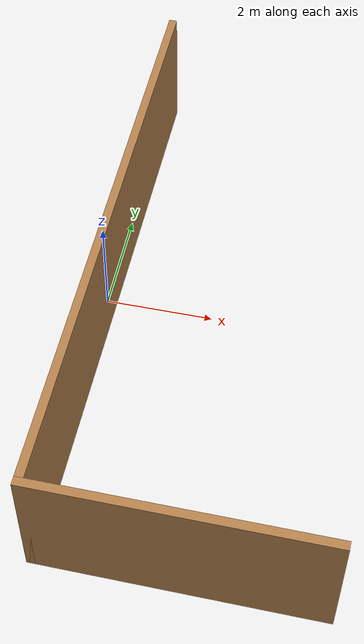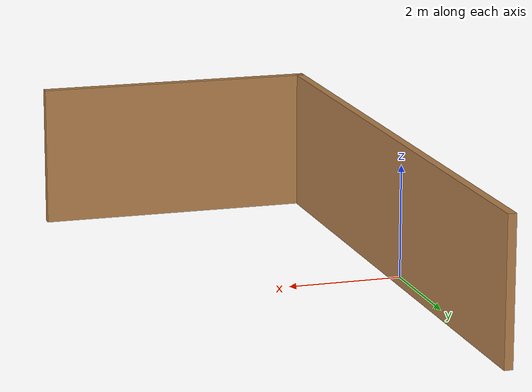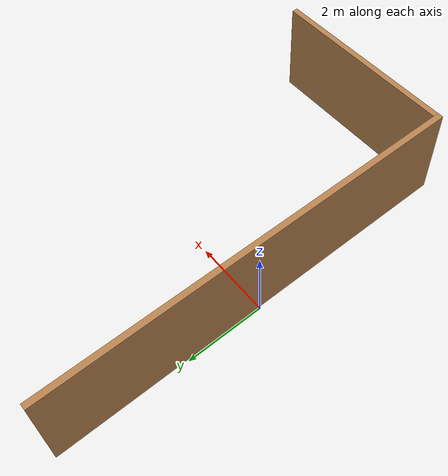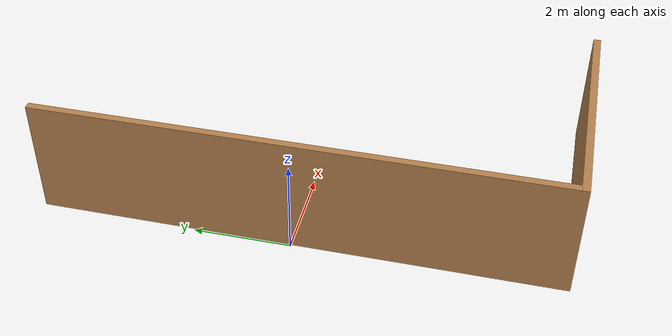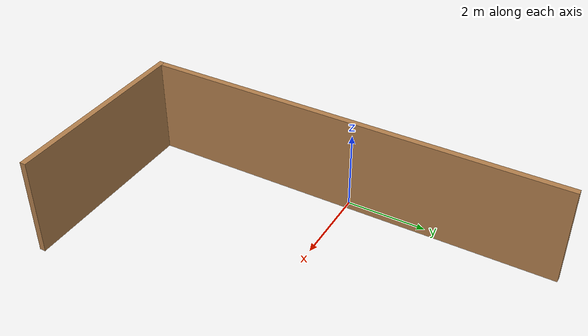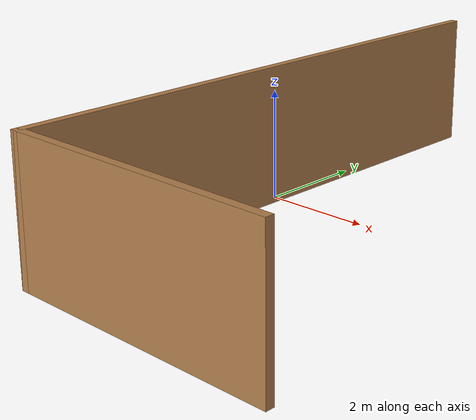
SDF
<?xml version='1.0'?>
<sdf version='1.7'>
  <model name='world_window'>
    <pose>2.51972 -0.107513 0 0 -0 0</pose>
    <link name='Wall_10'>
      <collision name='Wall_10_Collision'>
        <geometry>
          <box>
            <size>10.75 0.15 2.5</size>
          </box>
        </geometry>
        <pose>0 0 1.25 0 -0 0</pose>
      </collision>
      <visual name='Wall_10_Visual'>
        <pose>0 0 1.25 0 -0 0</pose>
        <geometry>
          <box>
            <size>10.75 0.15 2.5</size>
          </box>
        </geometry>
        <material>
          <script>
            <uri>file://media/materials/scripts/gazebo.material</uri>
            <name>Gazebo/Wood</name>
          </script>
          <ambient>1 1 1 1</ambient>
        </material>
        <meta>
          <layer>0</layer>
        </meta>
      </visual>
      <pose>-2.40528 0 0 0 -0 -1.5708</pose>
    </link>
    <link name='Wall_11'>
      <collision name='Wall_11_Collision'>
        <geometry>
          <box>
            <size>5 0.15 2.5</size>
          </box>
        </geometry>
        <pose>0 0 1.25 0 -0 0</pose>
      </collision>
      <visual name='Wall_11_Visual'>
        <pose>0 0 1.25 0 -0 0</pose>
        <geometry>
          <box>
            <size>5 0.15 2.5</size>
          </box>
        </geometry>
        <material>
          <script>
            <uri>file://media/materials/scripts/gazebo.material</uri>
            <name>Gazebo/Wood</name>
          </script>
          <ambient>1 1 1 1</ambient>
        </material>
        <meta>
          <layer>0</layer>
        </meta>
      </visual>
      <pose>0.019717 -5.3 0 0 -0 0</pose>
    </link>
    <static>1</static>
  </model>
</sdf>
